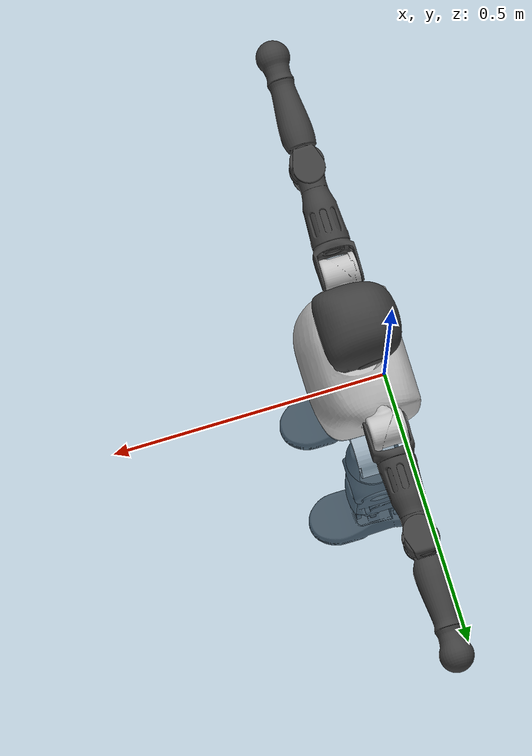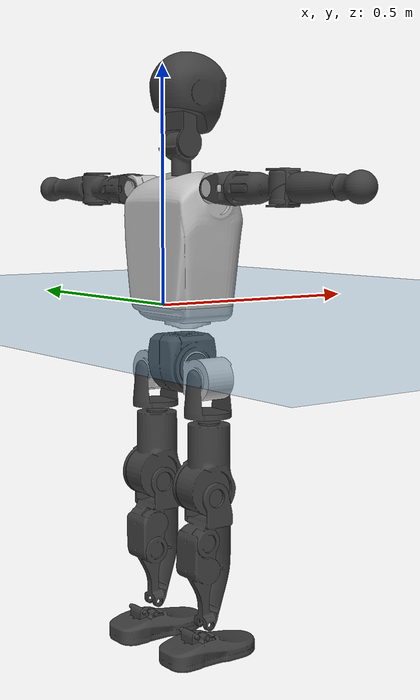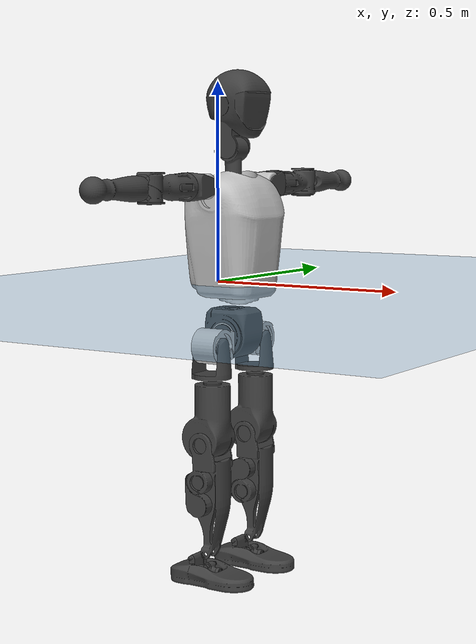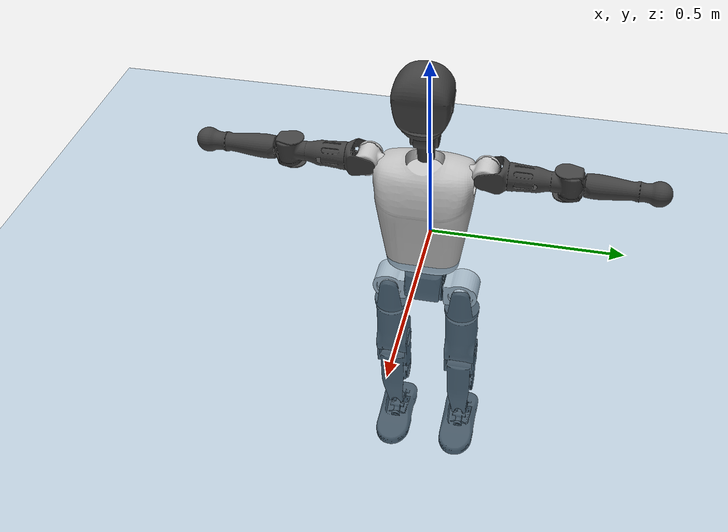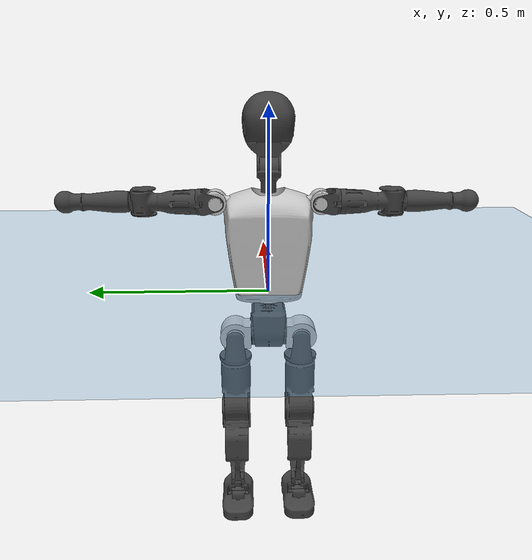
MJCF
<mujoco model="T1">
  <compiler angle="radian" assetdir="assets" balanceinertia="true" inertiafromgeom="false"/>

  <option timestep="0.005" density="1.2" viscosity="2e-05"/>

  <size nkey="1"/>

  <visual>
    <quality shadowsize="8192"/>
    <map shadowclip="0.5"/>
  </visual>

  <default>
    <default class="/">
      <joint armature="0.01" damping="0.01" frictionloss="0.1"/>
      <geom contype="0" conaffinity="0" group="1" solref="-1000 -80"/>
      <site size="0.01 0.005 0.005" group="5"/>
      <general forcelimited="true" biastype="affine" gainprm="25" biasprm="0 -25 -0.6"/>
      <default class="t1">
        <geom rgba="0.25 0.25 0.25 1"/>
        <default class="visual">
          <geom type="mesh" group="2"/>
        </default>
        <default class="collision">
          <geom group="3"/>
        </default>
        <default class="foot">
          <geom size="0.1115 0.05 0.015" type="box" condim="6" group="4" priority="1" solimp="0.015 1 0.015"/>
        </default>
        <default class="reward_collision_sphere">
          <geom group="5" rgba="1 0 0 1"/>
        </default>
      </default>
    </default>
  </default>

  <asset>
    <texture type="skybox" colorspace="auto" name="//unnamed_texture_0" builtin="gradient" rgb1="0.95 0.95 0.95" rgb2="0.95 0.95 0.95" width="100" height="600"/>
    <texture type="2d" colorspace="auto" name="texplane" builtin="checker" rgb1="0.345 0.575 0.748" rgb2="0.345 0.575 0.748" markrgb="1 1 1" width="512" height="512"/>
    <material name="MatPlane" class="/" texture="texplane" texuniform="true" texrepeat="2 2" specular="0.9"/>
    <mesh name="Trunk" class="/" file="Trunk.stl"/>
    <mesh name="H1" class="/" file="H1.stl"/>
    <mesh name="H2" class="/" file="H2.stl"/>
    <mesh name="AL1" class="/" file="AL1.stl"/>
    <mesh name="AL2" class="/" file="AL2.stl"/>
    <mesh name="AL3" class="/" file="AL3.stl"/>
    <mesh name="left_hand_link" class="/" file="left_hand_link.stl"/>
    <mesh name="AR1" class="/" file="AR1.stl"/>
    <mesh name="AR2" class="/" file="AR2.stl"/>
    <mesh name="AR3" class="/" file="AR3.stl"/>
    <mesh name="right_hand_link" class="/" file="right_hand_link.stl"/>
    <mesh name="Waist" class="/" file="Waist.stl"/>
    <mesh name="Hip_Pitch_Left" class="/" file="Hip_Pitch_Left.stl"/>
    <mesh name="Hip_Roll_Left" class="/" file="Hip_Roll_Left.stl"/>
    <mesh name="Hip_Yaw_Left" class="/" file="Hip_Yaw_Left.stl"/>
    <mesh name="Shank_Left" class="/" file="Shank_Left.stl"/>
    <mesh name="Ankle_Cross_Left" class="/" file="Ankle_Cross_Left.stl"/>
    <mesh name="left_foot_link" class="/" file="left_foot_link.stl"/>
    <mesh name="Hip_Pitch_Right" class="/" file="Hip_Pitch_Right.stl"/>
    <mesh name="Hip_Roll_Right" class="/" file="Hip_Roll_Right.stl"/>
    <mesh name="Hip_Yaw_Right" class="/" file="Hip_Yaw_Right.stl"/>
    <mesh name="Shank_Right" class="/" file="Shank_Right.stl"/>
    <mesh name="Ankle_Cross_Right" class="/" file="Ankle_Cross_Right.stl"/>
    <mesh name="right_foot_link" class="/" file="right_foot_link.stl"/>
  </asset>

  <worldbody>
    <geom name="floor" class="/" size="100 100 0.125" type="plane" group="0" material="MatPlane"/>
    <light name="toplight_shadow" class="/" pos="0 0 5" dir="0.0990148 0.0990148 -0.990148" type="directional" ambient="0.04 0.04 0.04" diffuse="0.55 0.55 0.55" specular="0.12 0.12 0.12"/>
    <light name="toplight_fill" class="/" pos="0 0 5" dir="0.0990148 0.0990148 -0.990148" type="directional" castshadow="false" ambient="0.04 0.04 0.04" diffuse="0.3 0.3 0.3" specular="0.08 0.08 0.08"/>
    <body name="trunk" childclass="t1" pos="2.8013e-06 -0.000870982 -0.000410973" quat="1 -0.000197111 -0.000247332 -0.000216617">
      <inertial pos="0.0416175 -0.000525033 0.117466" quat="0.99996 6.29919e-06 -0.00897703 -2.40052e-05" mass="9.4864" diaginertia="0.0236348 0.0493846 0.0977813"/>
      <joint name="//unnamed_joint_0" type="free" armature="0" damping="0" frictionloss="0"/>
      <geom name="//unnamed_geom_1" class="visual" rgba="0.76 0.76 0.76 1" mesh="Trunk"/>
      <geom name="//unnamed_geom_2" class="collision" size="0.0699601 0.0932801 0.13992" pos="0.0457225 0 0.134173" type="box"/>
      <geom name="//unnamed_geom_3" class="reward_collision_sphere" size="0.107272" pos="0.0457225 0 0.111811"/>
      <geom name="//unnamed_geom_4" class="reward_collision_sphere" size="0.013992" pos="0.0457225 0.0780518 0"/>
      <geom name="//unnamed_geom_5" class="reward_collision_sphere" size="0.013992" pos="0.0457225 -0.0780518 0"/>
      <geom name="//unnamed_geom_6" class="reward_collision_sphere" size="0.013992" pos="0.0457225 0.0982534 0.201259"/>
      <geom name="//unnamed_geom_7" class="reward_collision_sphere" size="0.013992" pos="0.0457225 -0.0982534 0.201259"/>
      <site name="imu" pos="-0.00167743 -3.06014e-06 -0.00104857" size="0.00932801"/>
      <camera name="track" pos="0 -1.83651 0" quat="0.707107 0.707107 0 0" mode="trackcom"/>
      <camera name="ego_camera" pos="0.0929691 0 0.469605" quat="-0.5 -0.5 0.5 0.5"/>
      <body name="H1" pos="0.0464059 -0.000347952 0.270944" quat="1 -9.2932e-05 -8.60701e-05 2.62187e-05">
        <inertial pos="-0.00156792 -0.0022275 0.0645086" quat="0.764074 -0.0138547 0.00302291 0.644973" mass="0.358536" diaginertia="6.1782e-05 0.000146659 0.000266268"/>
        <joint name="AAHead_yaw" pos="0 0 0" axis="-0.000189292 -0.00105967 0.999999" range="-1.5899 1.56661" armature="0.00925248" damping="0.0143743" frictionloss="0.0914046"/>
        <geom name="//unnamed_geom_8" class="visual" mesh="H1"/>
        <body name="H2" pos="-0.000227473 9.21069e-05 0.0685358" quat="1 -0.000217334 -5.76363e-05 -0.000249204">
          <inertial pos="0.00535964 0.00113278 0.110154" quat="0.988447 0.10619 -0.0745799 -0.0783248" mass="0.508761" diaginertia="0.000528964 0.00126849 0.00301972"/>
          <joint name="Head_pitch" pos="0 0 0" axis="-0.00090481 -0.999998 -0.00156877" stiffness="0.00137155" range="-1.20814 0.358803" armature="0.00923874" damping="0.00948886" frictionloss="0.0960756"/>
          <geom name="//unnamed_geom_9" class="visual" mesh="H2"/>
          <geom name="//unnamed_geom_10" class="collision" size="0.0746241" pos="0.00762042 0 0.122992"/>
          <geom name="//unnamed_geom_11" class="reward_collision_sphere" size="0.0839521" pos="0.0152408 0 0.111811"/>
        </body>
      </body>
      <body name="AL1" pos="0.0453992 0.0975232 0.244294" quat="1 4.45724e-06 0.000260839 6.64664e-05">
        <inertial pos="-0.00143027 0.0416673 0.00080159" quat="0.506493 0.493499 -0.504785 0.495092" mass="0.4348" diaginertia="0.000356133 0.000864557 0.000517667"/>
        <joint name="Left_Shoulder_Pitch" pos="0 0 0" axis="0.000817164 0.999997 -0.00213716" range="-3.31316 1.22211" armature="0.00915218" damping="0.0031455" frictionloss="0.095603"/>
        <geom name="//unnamed_geom_12" class="visual" rgba="0.76 0.76 0.76 1" mesh="AL1"/>
        <body name="AL2" pos="0.00107431 0.0441883 -9.47673e-05" quat="1 -2.28995e-05 -2.11052e-05 -1.04442e-05">
          <inertial pos="0.00297731 0.0348126 -0.000228169" quat="0.489143 0.510468 -0.48631 0.513483" mass="0.129269" diaginertia="0.000102899 0.000228469 0.000310477"/>
          <joint name="Left_Shoulder_Roll" pos="0 0 0" axis="-0.999995 0.00141497 -0.00265885" range="-1.56803 1.7318" armature="0.00954356" damping="0.00508815" frictionloss="0.0914821"/>
          <geom name="//unnamed_geom_13" class="visual" mesh="AL2"/>
          <body name="AL3" pos="0.000221272 0.056652 -0.000235321" quat="1 -0.000240664 7.77132e-05 6.89348e-05">
            <inertial pos="-0.000874364 0.0783909 -0.000337619" quat="0.70623 0.707982 -0.000455283 0.000532536" mass="0.830587" diaginertia="0.00327726 0.00836815 0.00109597"/>
            <joint name="Left_Elbow_Pitch" pos="0 0 0" axis="-7.73064e-05 -1 -1.538e-05" range="-2.26391 2.26635" armature="0.00916323" damping="0.00739266" frictionloss="0.0907294"/>
            <geom name="//unnamed_geom_14" class="visual" mesh="AL3"/>
            <geom name="//unnamed_geom_15" class="collision" size="0.027984 0.0699601" pos="0 0.0459128 0" quat="0.707105 0.707108 0 0" type="cylinder"/>
            <geom name="//unnamed_geom_16" class="reward_collision_sphere" size="0.0335808"/>
            <body name="left_hand_link" pos="0.00129434 0.134795 0.00174581" quat="1 1.34827e-05 -0.000177198 -7.49791e-05">
              <inertial pos="8.16322e-05 0.100037 -0.0003152" quat="0.70711 0.707103 -0.000391075 -0.00052104" mass="0.269907" diaginertia="0.00209991 0.00529995 0.000379097"/>
              <joint name="Left_Elbow_Yaw" pos="0 0 0" axis="-0.00368841 0.000548767 0.999993" range="-2.44382 -0.00220389" armature="0.00950586" damping="0.00996979" frictionloss="0.0891296"/>
              <geom name="//unnamed_geom_17" class="visual" mesh="left_hand_link"/>
              <geom name="//unnamed_geom_18" class="collision" size="0.027984 0.0816201" pos="0 0.119373 0" quat="0.707105 0.707108 0 0" type="cylinder"/>
              <geom name="//unnamed_geom_19" class="reward_collision_sphere" size="0.0466401"/>
              <geom name="//unnamed_geom_20" class="reward_collision_sphere" size="0.032648" pos="0 0.101008 0"/>
              <geom name="//unnamed_geom_21" class="reward_collision_sphere" size="0.032648" pos="0 0.197425 0"/>
            </body>
          </body>
        </body>
      </body>
      <body name="AR1" pos="0.0427928 -0.0963764 0.244504" quat="1 -5.11721e-05 0.000426209 -8.57389e-05">
        <inertial pos="-0.000432171 -0.0407532 0.000314999" quat="0.506103 0.493002 -0.50577 0.494981" mass="0.432762" diaginertia="0.000354153 0.000848419 0.000511891"/>
        <joint name="Right_Shoulder_Pitch" pos="0 0 0" axis="0.00115105 -0.999999 0.000458474" range="-1.22608 3.29208" armature="0.00904285" damping="0.00845979" frictionloss="0.0936063"/>
        <geom name="//unnamed_geom_22" class="visual" rgba="0.76 0.76 0.76 1" mesh="AR1"/>
        <body name="AR2" pos="-0.000826832 -0.0430377 -0.000795155" quat="1 -4.09651e-05 -0.000171386 0.000268963">
          <inertial pos="0.00341356 -0.0347428 -0.000364778" quat="0.51149 0.488068 -0.512135 0.487736" mass="0.130071" diaginertia="0.000104054 0.000224428 0.000309033"/>
          <joint name="Right_Shoulder_Roll" pos="0 0 0" axis="-0.999974 0.00713843 -0.000714674" stiffness="0.000594382" range="-1.73521 1.57441" armature="0.00932306" damping="0.00247909" frictionloss="0.0927912"/>
          <geom name="//unnamed_geom_23" class="visual" mesh="AR2"/>
          <body name="AR3" pos="-5.36419e-05 -0.056057 8.29339e-05" quat="1 -8.72403e-05 -3.91133e-05 2.54313e-05">
            <inertial pos="-0.00104318 -0.0785144 0.000462753" quat="0.707581 0.706622 0.00298494 0.00230015" mass="0.837215" diaginertia="0.00335947 0.00844782 0.0010872"/>
            <joint name="Right_Elbow_Pitch" pos="0 0 0" axis="-0.0032313 0.999989 0.00328786" range="-2.27447 2.28673" armature="0.00959207" damping="0.00742956" frictionloss="0.0932125"/>
            <geom name="//unnamed_geom_24" class="visual" mesh="AR3"/>
            <geom name="//unnamed_geom_25" class="collision" size="0.027984 0.0699601" pos="0 -0.0459128 0" quat="0.707105 0.707108 0 0" type="cylinder"/>
            <geom name="//unnamed_geom_26" class="reward_collision_sphere" size="0.0335808"/>
            <body name="right_hand_link" pos="-0.000408965 -0.134925 3.71889e-05" quat="1 -5.26337e-06 -1.92918e-05 5.54121e-07">
              <inertial pos="0.000491938 -0.10117 0.000750473" quat="0.706531 0.707682 -2.21575e-05 -0.000311251" mass="0.267833" diaginertia="0.00210856 0.00538779 0.000375623"/>
              <joint name="Right_Elbow_Yaw" pos="0 0 0" axis="0.000112559 -1.05798e-05 1" stiffness="0.00289025" range="0.00187957 2.43941" armature="0.00928474" damping="0.00860422" frictionloss="0.0920228"/>
              <geom name="//unnamed_geom_27" class="visual" mesh="right_hand_link"/>
              <geom name="//unnamed_geom_28" class="collision" size="0.027984 0.0816201" pos="0 -0.119373 0" quat="0.707105 0.707108 0 0" type="cylinder"/>
              <geom name="//unnamed_geom_29" class="reward_collision_sphere" size="0.0466401"/>
              <geom name="//unnamed_geom_30" class="reward_collision_sphere" size="0.032648" pos="0 -0.101008 0"/>
              <geom name="//unnamed_geom_31" class="reward_collision_sphere" size="0.032648" pos="0 -0.197425 0"/>
            </body>
          </body>
        </body>
      </body>
      <body name="Waist" pos="0.0474854 -0.000796986 -0.129873" quat="1 -7.36146e-09 2.33772e-08 -9.42588e-08">
        <inertial pos="0.0005074 -0.000737225 0.00764181" quat="0.983624 0.000400347 -0.180213 0.00257183" mass="2.10917" diaginertia="0.00140327 0.00348883 0.00843204"/>
        <joint name="Waist" pos="0 0 0" axis="0.000974839 -0.000369761 0.999999" stiffness="0.00154314" range="-1.55591 1.55415" armature="0.00941911" damping="0" frictionloss="0.0939204"/>
        <geom name="//unnamed_geom_32" class="visual" mesh="Waist"/>
        <body name="Hip_Pitch_Left" pos="0.000979544 0.097857 -0.000474958" quat="1 -0.000321888 -0.000253742 0.000195309">
          <inertial pos="0.00144411 -0.00691848 -0.0211756" quat="0.97494 0.221865 0.0162551 0.00198907" mass="0.831831" diaginertia="0.000459429 0.000950316 0.0022061"/>
          <joint name="Left_Hip_Pitch" pos="0 0 0" axis="0.000620053 0.999983 0.00580874" range="-1.80854 1.57127" armature="0.00933075" damping="0.0115831" frictionloss="0.0945402"/>
          <geom name="//unnamed_geom_33" class="visual" rgba="0.76 0.76 0.76 1" mesh="Hip_Pitch_Left"/>
          <body name="Hip_Roll_Left" pos="-0.000893217 0.000726318 -0.0235652" quat="1 -9.68033e-05 -6.81257e-05 4.39035e-05">
            <inertial pos="0.0015083 -0.000548627 -0.0600547" quat="0.707902 -0.00334251 -0.00753867 0.706262" mass="0.310212" diaginertia="0.000441144 0.000970679 0.000890503"/>
            <joint name="Left_Hip_Roll" pos="0 0 0" axis="-0.999999 0.00149895 -0.000855377" range="-1.58402 0.202286" armature="0.00931992" damping="0.00558381" frictionloss="0.0967869"/>
            <geom name="//unnamed_geom_34" class="visual" mesh="Hip_Roll_Left"/>
            <geom name="//unnamed_geom_35" class="reward_collision_sphere" size="0.0513041"/>
            <body name="Hip_Yaw_Left" pos="0.00105636 0.000448027 -0.091665" quat="1 -3.34996e-05 1.32802e-06 -5.11939e-05">
              <inertial pos="-0.00468371 -0.000560503 -0.100101" quat="0.697051 -0.0346955 -0.0316057 0.715484" mass="1.77832" diaginertia="0.00670543 0.0165457 0.00454489"/>
              <joint name="Left_Hip_Yaw" pos="0 0 0" axis="0.00216637 0.00407644 -0.999989" range="-1.01029 0.993091" armature="0.0096202" damping="0.0127043" frictionloss="0.0934366"/>
              <geom name="//unnamed_geom_36" class="visual" mesh="Hip_Yaw_Left"/>
              <geom name="//unnamed_geom_37" class="collision" size="0.0466401 0.0746241" type="cylinder"/>
              <body name="Shank_Left" pos="-0.00962849 0.00027767 -0.150854" quat="1 -9.52072e-06 7.14608e-05 -0.00032032">
                <inertial pos="-0.00549626 -0.000431484 -0.138728" quat="0.997574 0.00144495 -0.0239545 0.0653539" mass="1.38801" diaginertia="0.00878236 0.0223954 0.00320365"/>
                <joint name="Left_Knee_Pitch" pos="0 0 0" axis="-0.00201412 0.999997 0.000986033" stiffness="0.000130176" range="-0.00813839 2.34106" armature="0.00898792" damping="0.00730817" frictionloss="0.0926199"/>
                <geom name="//unnamed_geom_38" class="visual" mesh="Shank_Left"/>
                <geom name="//unnamed_geom_39" class="collision" size="0.0466401 0.0699601" pos="0 0 -0.134173" type="cylinder"/>
                <geom name="//unnamed_geom_40" class="reward_collision_sphere" size="0.0606321"/>
                <body name="Ankle_Cross_Left" pos="-0.000733135 0.000161694 -0.313242" quat="1 -2.4767e-05 -0.00015822 -9.83098e-05">
                  <inertial pos="-0.00265048 0.000261342 -0.00925056" quat="0.443293 0.551814 0.548805 0.444754" mass="0.0592457" diaginertia="7.4343e-06 1.67354e-05 1.98111e-05"/>
                  <joint name="Left_Ankle_Pitch" pos="0 0 0" axis="0.00450509 0.99999 0.000393765" range="-0.866538 0.350825" armature="0.00941238" damping="0.00670086" frictionloss="0.092473"/>
                  <geom name="//unnamed_geom_41" class="visual" mesh="Ankle_Cross_Left"/>
                  <body name="left_foot_link" pos="-0.00114006 -0.000246338 -0.0137102" quat="1 -1.71681e-05 -0.000450091 0.000137056">
                    <inertial pos="-0.00011902 0.000311965 -0.00926318" quat="-0.000110851 0.620814 -2.01501e-05 0.783958" mass="0.563436" diaginertia="0.00070109 0.00156595 0.00387285"/>
                    <joint name="Left_Ankle_Roll" pos="0 0 0" axis="-0.999996 -0.00149126 0.00237132" range="-0.425808 0.426801" armature="0.00936032" damping="0.0122498" frictionloss="0.0934721"/>
                    <geom name="//unnamed_geom_42" class="visual" mesh="left_foot_link"/>
                    <geom name="left_foot" class="foot" size="0.104505 0.0500068 0.0138744" pos="0.00762042 0 -0.0167716"/>
                    <geom name="//unnamed_geom_44" class="reward_collision_sphere" size="0.0485057" pos="0.00762042 0 -0.0167716"/>
                    <geom name="//unnamed_geom_45" class="reward_collision_sphere" size="0.027984" pos="0.0723939 -0.0211199 -0.0167716"/>
                    <geom name="//unnamed_geom_46" class="reward_collision_sphere" size="0.027984" pos="-0.0533429 -0.0211199 -0.0167716"/>
                    <site name="left_foot" class="foot" pos="0.00762042 0 -0.0167716" size="0.00932801"/>
                  </body>
                </body>
              </body>
            </body>
          </body>
        </body>
        <body name="Hip_Pitch_Right" pos="-0.000147589 -0.0964053 -9.45101e-05" quat="1 -0.000146417 3.79663e-05 -9.59448e-07">
          <inertial pos="0.000330426 0.0062365 -0.019669" quat="0.97367 -0.227589 0.0127926 -0.00243272" mass="0.832128" diaginertia="0.000466649 0.000957451 0.00216808"/>
          <joint name="Right_Hip_Pitch" pos="0 0 0" axis="0.00132813 -0.999999 0.0010454" range="-1.58938 1.8009" armature="0.00923807" damping="0.00302734" frictionloss="0.0959313"/>
          <geom name="//unnamed_geom_47" class="visual" rgba="0.76 0.76 0.76 1" mesh="Hip_Pitch_Right"/>
          <body name="Hip_Roll_Right" pos="-0.000617852 0.00015165 -0.0226911" quat="1 -9.92496e-07 6.73948e-06 3.18016e-05">
            <inertial pos="0.00100735 -0.000263636 -0.0608131" quat="0.707074 -0.00611514 -0.00601248 0.707088" mass="0.312697" diaginertia="0.000442117 0.000987028 0.000898747"/>
            <joint name="Right_Hip_Roll" pos="0 0 0" axis="-0.999999 0.00113235 -0.00062155" range="-0.218844 1.57821" armature="0.00930224" damping="0.0108504" frictionloss="0.0915104"/>
            <geom name="//unnamed_geom_48" class="visual" mesh="Hip_Roll_Right"/>
            <geom name="//unnamed_geom_49" class="reward_collision_sphere" size="0.0513041"/>
            <body name="Hip_Yaw_Right" pos="-7.29831e-05 -0.00027336 -0.0919703" quat="1 -1.36108e-06 -1.15458e-06 4.54441e-07">
              <inertial pos="-0.00484688 0.000465759 -0.0993969" quat="0.715084 -0.0319534 -0.0340004 0.697479" mass="1.74821" diaginertia="0.00655438 0.0163551 0.00450796"/>
              <joint name="Right_Hip_Yaw" pos="0 0 0" axis="-9.75375e-06 -0.000256714 -1" range="-0.996118 1.00306" armature="0.00932609" damping="0.00630827" frictionloss="0.093166"/>
              <geom name="//unnamed_geom_50" class="visual" mesh="Hip_Yaw_Right"/>
              <geom name="//unnamed_geom_51" class="collision" size="0.0466401 0.0746241" type="cylinder"/>
              <body name="Shank_Right" pos="-0.0106998 -0.00018243 -0.149472" quat="1 -1.32958e-05 -3.64416e-05 -8.49563e-06">
                <inertial pos="-0.00593955 -0.000326747 -0.13632" quat="0.99918 0.00014431 -0.0228155 -0.0334337" mass="1.42777" diaginertia="0.00892055 0.0224719 0.00339802"/>
                <joint name="Right_Knee_Pitch" pos="0 0 0" axis="0.00707083 -0.999973 -0.00202872" range="-2.34078 -0.00525166" armature="0.00944581" damping="0.00688106" frictionloss="0.0970035"/>
                <geom name="//unnamed_geom_52" class="visual" mesh="Shank_Right"/>
                <geom name="//unnamed_geom_53" class="collision" size="0.0466401 0.0699601" pos="0 0 -0.134173" type="cylinder"/>
                <geom name="//unnamed_geom_54" class="reward_collision_sphere" size="0.0606321"/>
                <body name="Ankle_Cross_Right" pos="0.0012973 0.000412902 -0.31299" quat="1 4.90575e-05 -8.67331e-05 0.000121512">
                  <inertial pos="-0.00236319 0.00108856 -0.00870644" quat="0.446615 0.548448 0.550424 0.443591" mass="0.0597518" diaginertia="7.44819e-06 1.66469e-05 1.97922e-05"/>
                  <joint name="Right_Ankle_Pitch" pos="0 0 0" axis="-0.000255422 -1 0.000173904" range="-0.329146 0.850519" armature="0.00906119" damping="0.00711309" frictionloss="0.0929551"/>
                  <geom name="//unnamed_geom_55" class="visual" mesh="Ankle_Cross_Right"/>
                  <body name="right_foot_link" pos="0.000120281 -0.00124035 -0.0138911" quat="1 -8.62008e-06 -4.95625e-05 -3.16571e-05">
                    <inertial pos="-0.000181237 0.000371799 -0.0094584" quat="-0.00159995 0.621701 0.000457341 0.783253" mass="0.55225" diaginertia="0.000690968 0.00157292 0.00380993"/>
                    <joint name="Right_Ankle_Roll" pos="0 0 0" axis="-1 0.00055725 -0.000507822" range="-0.444841 0.434522" armature="0.00954996" damping="0.0114418" frictionloss="0.0981483"/>
                    <geom name="//unnamed_geom_56" class="visual" mesh="right_foot_link"/>
                    <geom name="right_foot" class="foot" size="0.101714 0.0437361 0.0146919" pos="0.00762042 0 -0.0167716"/>
                    <geom name="//unnamed_geom_58" class="reward_collision_sphere" size="0.0373121"/>
                    <geom name="//unnamed_geom_59" class="reward_collision_sphere" size="0.027984" pos="0.00762042 0 -0.0167716"/>
                    <geom name="//unnamed_geom_60" class="reward_collision_sphere" size="0.027984" pos="0.0723939 0.0211199 -0.0167716"/>
                    <geom name="//unnamed_geom_61" class="reward_collision_sphere" size="0.027984" pos="-0.0533429 0.0211199 -0.0167716"/>
                    <site name="right_foot" class="foot" pos="0.00762042 0 -0.0167716" size="0.00932801"/>
                  </body>
                </body>
              </body>
            </body>
          </body>
        </body>
      </body>
    </body>
  </worldbody>

  <contact>
    <pair class="/" geom1="floor" geom2="left_foot" name="//unnamed_contact_0"/>
    <pair class="/" geom1="floor" geom2="right_foot" name="//unnamed_contact_1"/>
  </contact>

  <actuator>
    <general name="AAHead_yaw" class="/" joint="AAHead_yaw" forcerange="-6.50152 6.50152" gainprm="22.873" biasprm="0 -22.873 -0.552204"/>
    <general name="Head_pitch" class="/" joint="Head_pitch" forcerange="-6.35994 6.35994" gainprm="22.873" biasprm="0 -22.873 -0.552204"/>
    <general name="Left_Shoulder_Pitch" class="/" joint="Left_Shoulder_Pitch" forcerange="-17.0864 17.0864" gainprm="22.873" biasprm="0 -22.873 -0.552204"/>
    <general name="Left_Shoulder_Roll" class="/" joint="Left_Shoulder_Roll" forcerange="-16.9078 16.9078" gainprm="22.873" biasprm="0 -22.873 -0.552204"/>
    <general name="Left_Elbow_Pitch" class="/" joint="Left_Elbow_Pitch" forcerange="-16.9669 16.9669" gainprm="22.873" biasprm="0 -22.873 -0.552204"/>
    <general name="Left_Elbow_Yaw" class="/" joint="Left_Elbow_Yaw" forcerange="-16.8653 16.8653" gainprm="22.873" biasprm="0 -22.873 -0.552204"/>
    <general name="Right_Shoulder_Pitch" class="/" joint="Right_Shoulder_Pitch" forcerange="-17.2208 17.2208" gainprm="22.873" biasprm="0 -22.873 -0.552204"/>
    <general name="Right_Shoulder_Roll" class="/" joint="Right_Shoulder_Roll" forcerange="-16.238 16.238" gainprm="22.873" biasprm="0 -22.873 -0.552204"/>
    <general name="Right_Elbow_Pitch" class="/" joint="Right_Elbow_Pitch" forcerange="-16.7845 16.7845" gainprm="22.873" biasprm="0 -22.873 -0.552204"/>
    <general name="Right_Elbow_Yaw" class="/" joint="Right_Elbow_Yaw" forcerange="-16.5098 16.5098" gainprm="22.873" biasprm="0 -22.873 -0.552204"/>
    <general name="Waist" class="/" joint="Waist" forcerange="-28.1491 28.1491" gainprm="22.873" biasprm="0 -22.873 -0.552204"/>
    <general name="Left_Hip_Pitch" class="/" joint="Left_Hip_Pitch" forcerange="-41.6884 41.6884" gainprm="22.873" biasprm="0 -22.873 -0.552204"/>
    <general name="Left_Hip_Roll" class="/" joint="Left_Hip_Roll" forcerange="-28.5822 28.5822" gainprm="22.873" biasprm="0 -22.873 -0.552204"/>
    <general name="Left_Hip_Yaw" class="/" joint="Left_Hip_Yaw" forcerange="-28.9312 28.9312" gainprm="22.873" biasprm="0 -22.873 -0.552204"/>
    <general name="Left_Knee_Pitch" class="/" joint="Left_Knee_Pitch" forcerange="-56.3615 56.3615" gainprm="22.873" biasprm="0 -22.873 -0.552204"/>
    <general name="Left_Ankle_Pitch" class="/" joint="Left_Ankle_Pitch" forcerange="-19.2845 19.2845" gainprm="22.873" biasprm="0 -22.873 -0.552204"/>
    <general name="Left_Ankle_Roll" class="/" joint="Left_Ankle_Roll" forcerange="-14.4565 14.4565" gainprm="22.873" biasprm="0 -22.873 -0.552204"/>
    <general name="Right_Hip_Pitch" class="/" joint="Right_Hip_Pitch" forcerange="-42.1066 42.1066" gainprm="22.873" biasprm="0 -22.873 -0.552204"/>
    <general name="Right_Hip_Roll" class="/" joint="Right_Hip_Roll" forcerange="-27.7813 27.7813" gainprm="22.873" biasprm="0 -22.873 -0.552204"/>
    <general name="Right_Hip_Yaw" class="/" joint="Right_Hip_Yaw" forcerange="-27.1056 27.1056" gainprm="22.873" biasprm="0 -22.873 -0.552204"/>
    <general name="Right_Knee_Pitch" class="/" joint="Right_Knee_Pitch" forcerange="-56.174 56.174" gainprm="22.873" biasprm="0 -22.873 -0.552204"/>
    <general name="Right_Ankle_Pitch" class="/" joint="Right_Ankle_Pitch" forcerange="-18.5477 18.5477" gainprm="22.873" biasprm="0 -22.873 -0.552204"/>
    <general name="Right_Ankle_Roll" class="/" joint="Right_Ankle_Roll" forcerange="-14.1429 14.1429" gainprm="22.873" biasprm="0 -22.873 -0.552204"/>
  </actuator>

  <sensor>
    <gyro site="imu" name="imu_angular_velocity"/>
    <velocimeter site="imu" name="imu_linear_velocity"/>
    <framelinvel objtype="site" objname="left_foot" name="left_foot_global_linear_velocity"/>
    <framelinvel objtype="site" objname="right_foot" name="right_foot_global_linear_velocity"/>
  </sensor>

  <keyframe>
    <key name="home" qpos="0 0 0.6385 1 0 0 0 0 0 0 1.4 0 -0.4 0 -1.4 0 0.4 0 -0.4 0 0 0.8 -0.4 0 0.4 0 0 -0.8 0.4 0"/>
  </keyframe>
</mujoco>
